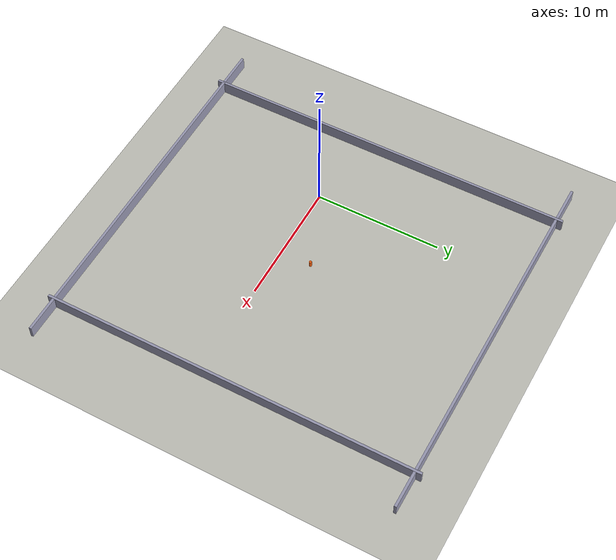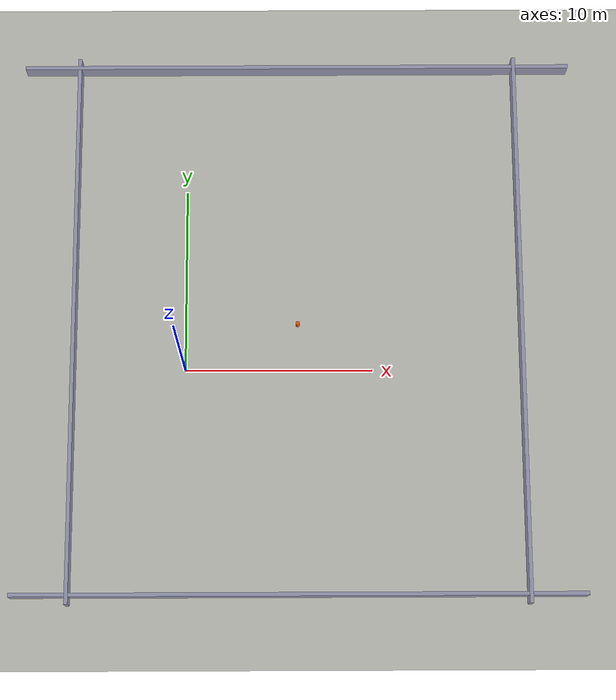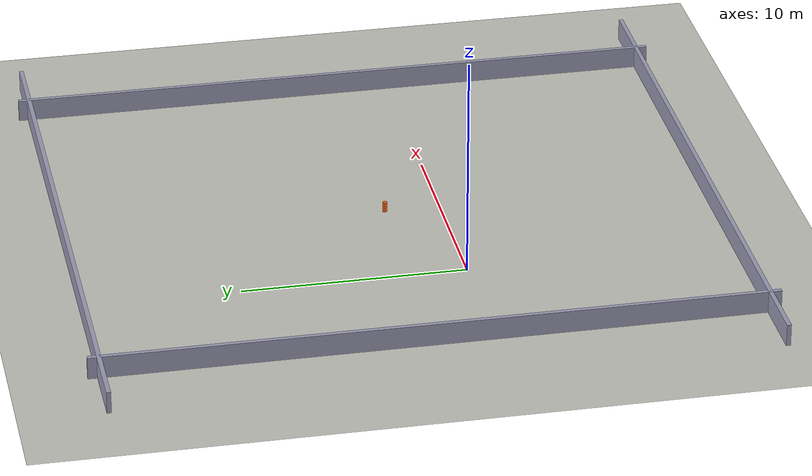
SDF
<?xml version="1.0"?>
<sdf version="1.9">
  <world name="trekking_min">

    <physics name="1ms" type="ignored">
      <max_step_size>0.001</max_step_size>
      <real_time_factor>1.0</real_time_factor>
    </physics>

    <plugin filename="gz-sim-physics-system"
            name="gz::sim::systems::Physics"/>
    <plugin filename="gz-sim-user-commands-system"
            name="gz::sim::systems::UserCommands"/>
    <plugin filename="gz-sim-scene-broadcaster-system"
            name="gz::sim::systems::SceneBroadcaster"/>
    <plugin filename="gz-sim-imu-system"
            name="gz::sim::systems::Imu"></plugin>
    <plugin filename="gz-sim-sensors-system"
            name="gz::sim::systems::Sensors">
      <render_engine>ogre2</render_engine>
    </plugin>

    <light type="directional" name="sun">
      <cast_shadows>true</cast_shadows>
      <pose>0 0 10 0 0 0</pose>
      <diffuse>0.8 0.8 0.8 1</diffuse>
      <specular>0.2 0.2 0.2 1</specular>
      <direction>-0.5 0.1 -0.9</direction>
    </light>

    <model name="ground_plane">
      <static>true</static>
      <link name="link">
        <collision name="collision">
          <geometry><plane><normal>0 0 1</normal><size>100 100</size></plane></geometry>
        </collision>
        <visual name="visual">
          <geometry><plane><normal>0 0 1</normal><size>100 100</size></plane></geometry>
          <material>
            <ambient>0.75 0.75 0.72 1</ambient>
            <diffuse>0.75 0.75 0.72 1</diffuse>
          </material>
        </visual>
      </link>
    </model>

    <model name="cone_1">
      <static>true</static><pose>6.0 2.5 0.225 0 0 0</pose>
      <link name="link">
        <collision name="col"><geometry><cylinder><radius>0.11</radius><length>0.45</length></cylinder></geometry></collision>
        <visual name="vis"><geometry><cylinder><radius>0.11</radius><length>0.45</length></cylinder></geometry>
          <material><ambient>0.9 0.35 0.05 1</ambient><diffuse>0.9 0.35 0.05 1</diffuse></material></visual>
      </link>
    </model>

    <model name="wall_west">
      <static>true</static><pose>-6 2.5 0.5 0 0 0</pose>
      <link name="link">
        <collision name="col"><geometry><box><size>0.2 30 1</size></box></geometry></collision>
        <visual name="vis"><geometry><box><size>0.2 30 1</size></box></geometry>
          <material><diffuse>0.6 0.6 0.7 1</diffuse></material></visual>
      </link>
    </model>
    <model name="wall_east">
      <static>true</static><pose>18 2.5 0.5 0 0 0</pose>
      <link name="link">
        <collision name="col"><geometry><box><size>0.2 30 1</size></box></geometry></collision>
        <visual name="vis"><geometry><box><size>0.2 30 1</size></box></geometry>
          <material><diffuse>0.6 0.6 0.7 1</diffuse></material></visual>
      </link>
    </model>
    <model name="wall_south">
      <static>true</static><pose>6 -12 0.5 0 0 0</pose>
      <link name="link">
        <collision name="col"><geometry><box><size>30 0.2 1</size></box></geometry></collision>
        <visual name="vis"><geometry><box><size>30 0.2 1</size></box></geometry>
          <material><diffuse>0.6 0.6 0.7 1</diffuse></material></visual>
      </link>
    </model>
    <model name="wall_north">
      <static>true</static><pose>6 17 0.5 0 0 0</pose>
      <link name="link">
        <collision name="col"><geometry><box><size>30 0.2 1</size></box></geometry></collision>
        <visual name="vis"><geometry><box><size>30 0.2 1</size></box></geometry>
          <material><diffuse>0.6 0.6 0.7 1</diffuse></material></visual>
      </link>
    </model>

  </world>
</sdf>
